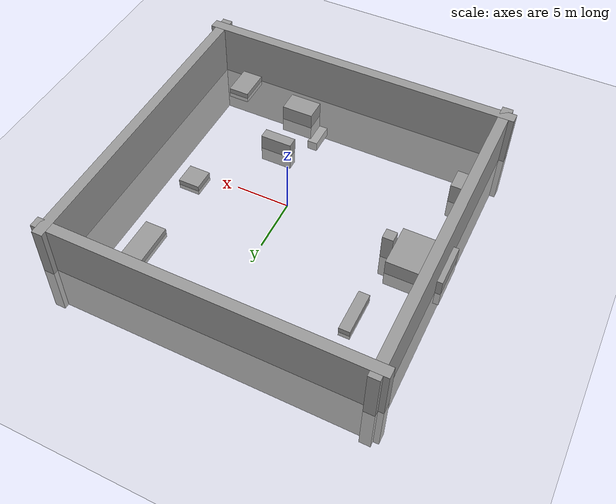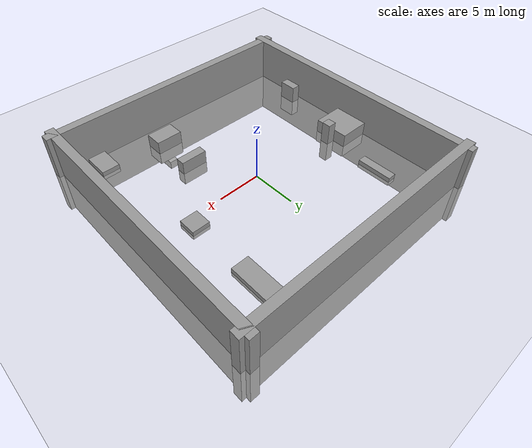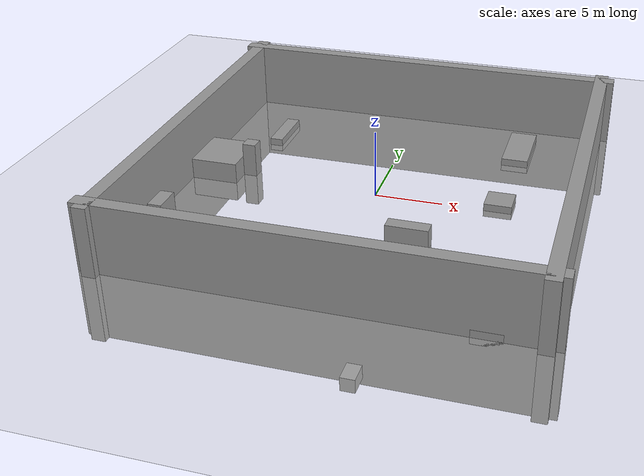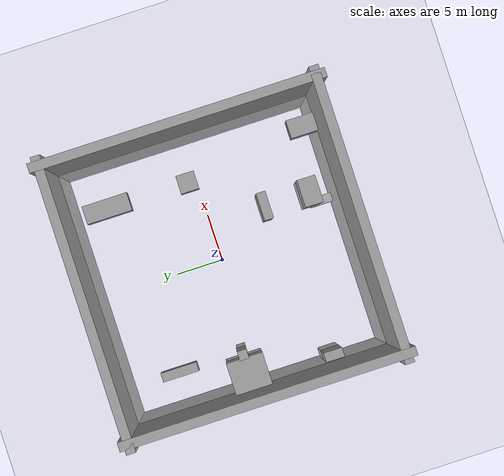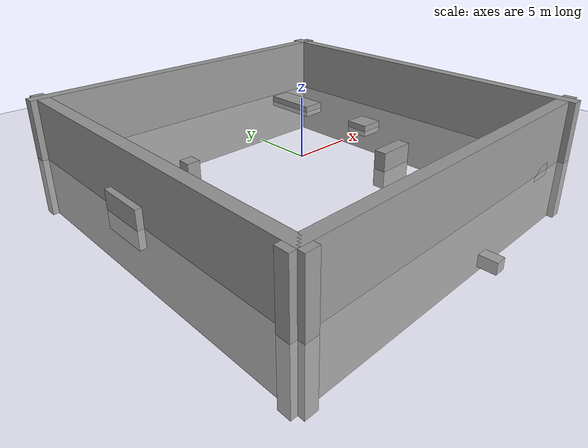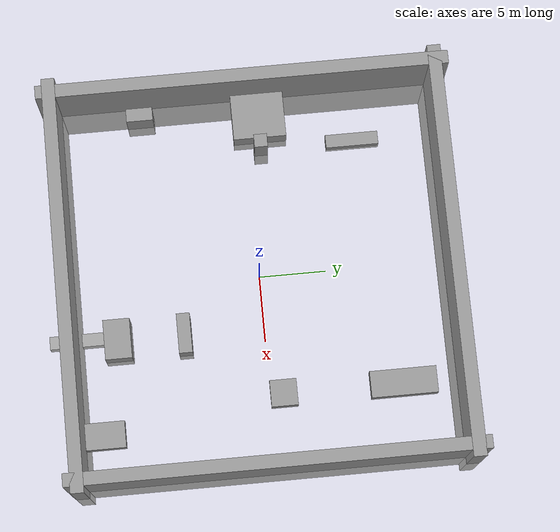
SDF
<sdf version="1.4">
 <world name="testworld">
  <plugin name="ros_interface_plugin" filename="librotors_gazebo_ros_interface_plugin.so"/>
  <light name="sun" type="directional">
   <pose>0 0 10 0 -0 0</pose>
   <diffuse>0.8 0.8 0.8 1</diffuse>
   <specular>0.2 0.2 0.2 1</specular>
   <attenuation>
    <range>1000</range>
    <constant>0.9</constant>
    <linear>0.01</linear>
    <quadratic>0.001</quadratic>
   </attenuation>
   <direction>-0.5 0.1 -0.9</direction>
   <spot><inner_angle>0</inner_angle><outer_angle>0</outer_angle><falloff>0</falloff></spot>
  </light>
  <model name="ground_plane">
   <static>1</static>
   <link name="link">
    <collision name="collision">
     <geometry><plane><normal>0 0 1</normal><size>30 30</size></plane></geometry>
     <surface>
      <contact><collide_bitmask>65535</collide_bitmask></contact>
      <friction><ode><mu>100</mu><mu2>50</mu2></ode></friction>
     </surface>
    </collision>
    <visual name="visual">
     <cast_shadows>0</cast_shadows>
     <geometry><plane><normal>0 0 1</normal><size>100 100</size></plane></geometry>
     <material>
      <script><uri>file://media/materials/scripts/gazebo.material</uri><name>Gazebo/Grey</name></script>
     </material>
    </visual>
   </link>
  </model>
  <gravity>0 0 -9.8</gravity>
  <magnetic_field>6e-06 2.3e-05 -4.2e-05</magnetic_field>
  <atmosphere type="adiabatic"/>
  <physics type="ode">
   <max_step_size>0.001</max_step_size>
   <real_time_factor>1</real_time_factor>
   <real_time_update_rate>1000</real_time_update_rate>
  </physics>
  <scene><ambient>0.4 0.4 0.4 1</ambient><background>0.7 0.7 0.7 1</background><shadows>1</shadows></scene>
  <spherical_coordinates>
   <surface_model>EARTH_WGS84</surface_model>
   <latitude_deg>0</latitude_deg>
   <longitude_deg>0</longitude_deg>
   <elevation>0</elevation>
   <heading_deg>0</heading_deg>
  </spherical_coordinates>
  <model name="box_xldzq">
   <pose>0 -14.5 0 0.0 0.0 0.0</pose>
   <link name="link">
    <inertial>
     <mass>1</mass>
     <inertia>
      <ixx>0.166667</ixx>
      <ixy>0</ixy>
      <ixz>0</ixz>
      <iyy>0.166667</iyy>
      <iyz>0</iyz>
      <izz>0.166667</izz>
     </inertia>
    </inertial>
    <collision name="collision"><geometry><box><size>31 1 10</size></box></geometry></collision>
    <visual name="visual">
     <geometry><box><size>31 1 10</size></box></geometry>
     <material>
      <script><name>Gazebo/Grey</name><uri>file://media/materials/scripts/gazebo.material</uri></script>
     </material>
    </visual>
   </link>
   <static>1</static>
  </model>
  <model name="box_pqfwh">
   <pose>0 14.5 0 0.0 0.0 0.0</pose>
   <link name="link">
    <inertial>
     <mass>1</mass>
     <inertia>
      <ixx>0.166667</ixx>
      <ixy>0</ixy>
      <ixz>0</ixz>
      <iyy>0.166667</iyy>
      <iyz>0</iyz>
      <izz>0.166667</izz>
     </inertia>
    </inertial>
    <collision name="collision"><geometry><box><size>31 1 10</size></box></geometry></collision>
    <visual name="visual">
     <geometry><box><size>31 1 10</size></box></geometry>
     <material>
      <script><name>Gazebo/Grey</name><uri>file://media/materials/scripts/gazebo.material</uri></script>
     </material>
    </visual>
   </link>
   <static>1</static>
  </model>
  <model name="box_gbfbz">
   <pose>14.5 0 0 0.0 0.0 1.5707963267948966</pose>
   <link name="link">
    <inertial>
     <mass>1</mass>
     <inertia>
      <ixx>0.166667</ixx>
      <ixy>0</ixy>
      <ixz>0</ixz>
      <iyy>0.166667</iyy>
      <iyz>0</iyz>
      <izz>0.166667</izz>
     </inertia>
    </inertial>
    <collision name="collision"><geometry><box><size>31 1 10</size></box></geometry></collision>
    <visual name="visual">
     <geometry><box><size>31 1 10</size></box></geometry>
     <material>
      <script><name>Gazebo/Grey</name><uri>file://media/materials/scripts/gazebo.material</uri></script>
     </material>
    </visual>
   </link>
   <static>1</static>
  </model>
  <model name="box_jvxqp">
   <pose>-14.5 0 0 0.0 0.0 1.5707963267948966</pose>
   <link name="link">
    <inertial>
     <mass>1</mass>
     <inertia>
      <ixx>0.166667</ixx>
      <ixy>0</ixy>
      <ixz>0</ixz>
      <iyy>0.166667</iyy>
      <iyz>0</iyz>
      <izz>0.166667</izz>
     </inertia>
    </inertial>
    <collision name="collision"><geometry><box><size>31 1 10</size></box></geometry></collision>
    <visual name="visual">
     <geometry><box><size>31 1 10</size></box></geometry>
     <material>
      <script><name>Gazebo/Grey</name><uri>file://media/materials/scripts/gazebo.material</uri></script>
     </material>
    </visual>
   </link>
   <static>1</static>
  </model>
  <model name="box_ebvtl">
   <pose>-13 -8 0 0.0 0.0 0.0</pose>
   <link name="link">
    <inertial>
     <mass>1</mass>
     <inertia>
      <ixx>0.166667</ixx>
      <ixy>0</ixy>
      <ixz>0</ixz>
      <iyy>0.166667</iyy>
      <iyz>0</iyz>
      <izz>0.166667</izz>
     </inertia>
    </inertial>
    <collision name="collision"><geometry><box><size>1 2 4</size></box></geometry></collision>
    <visual name="visual">
     <geometry><box><size>1 2 4</size></box></geometry>
     <material>
      <script><name>Gazebo/Grey</name><uri>file://media/materials/scripts/gazebo.material</uri></script>
     </material>
    </visual>
   </link>
   <static>1</static>
  </model>
  <model name="box_oucis">
   <pose>4 -6 0 0.0 0.0 0.0</pose>
   <link name="link">
    <inertial>
     <mass>1</mass>
     <inertia>
      <ixx>0.166667</ixx>
      <ixy>0</ixy>
      <ixz>0</ixz>
      <iyy>0.166667</iyy>
      <iyz>0</iyz>
      <izz>0.166667</izz>
     </inertia>
    </inertial>
    <collision name="collision"><geometry><box><size>3 1 3</size></box></geometry></collision>
    <visual name="visual">
     <geometry><box><size>3 1 3</size></box></geometry>
     <material>
      <script><name>Gazebo/Grey</name><uri>file://media/materials/scripts/gazebo.material</uri></script>
     </material>
    </visual>
   </link>
   <static>1</static>
  </model>
  <model name="box_dffmr">
   <pose>4 -11 0 0.0 0.0 0.0</pose>
   <link name="link">
    <inertial>
     <mass>1</mass>
     <inertia>
      <ixx>0.166667</ixx>
      <ixy>0</ixy>
      <ixz>0</ixz>
      <iyy>0.166667</iyy>
      <iyz>0</iyz>
      <izz>0.166667</izz>
     </inertia>
    </inertial>
    <collision name="collision"><geometry><box><size>3 2 3</size></box></geometry></collision>
    <visual name="visual">
     <geometry><box><size>3 2 3</size></box></geometry>
     <material>
      <script><name>Gazebo/Grey</name><uri>file://media/materials/scripts/gazebo.material</uri></script>
     </material>
    </visual>
   </link>
   <static>1</static>
  </model>
  <model name="box_mukgg">
   <pose>-10 1 0 0.0 0.0 0.0</pose>
   <link name="link">
    <inertial>
     <mass>1</mass>
     <inertia>
      <ixx>0.166667</ixx>
      <ixy>0</ixy>
      <ixz>0</ixz>
      <iyy>0.166667</iyy>
      <iyz>0</iyz>
      <izz>0.166667</izz>
     </inertia>
    </inertial>
    <collision name="collision"><geometry><box><size>1 1 5</size></box></geometry></collision>
    <visual name="visual">
     <geometry><box><size>1 1 5</size></box></geometry>
     <material>
      <script><name>Gazebo/Grey</name><uri>file://media/materials/scripts/gazebo.material</uri></script>
     </material>
    </visual>
   </link>
   <static>1</static>
  </model>
  <model name="box_obyld">
   <pose>-10 8 0 0.0 0.0 0.0</pose>
   <link name="link">
    <inertial>
     <mass>1</mass>
     <inertia>
      <ixx>0.166667</ixx>
      <ixy>0</ixy>
      <ixz>0</ixz>
      <iyy>0.166667</iyy>
      <iyz>0</iyz>
      <izz>0.166667</izz>
     </inertia>
    </inertial>
    <collision name="collision"><geometry><box><size>1 4 1</size></box></geometry></collision>
    <visual name="visual">
     <geometry><box><size>1 4 1</size></box></geometry>
     <material>
      <script><name>Gazebo/Grey</name><uri>file://media/materials/scripts/gazebo.material</uri></script>
     </material>
    </visual>
   </link>
   <static>1</static>
  </model>
  <model name="box_izheu">
   <pose>-13 1 0 0.0 0.0 0.0</pose>
   <link name="link">
    <inertial>
     <mass>1</mass>
     <inertia>
      <ixx>0.166667</ixx>
      <ixy>0</ixy>
      <ixz>0</ixz>
      <iyy>0.166667</iyy>
      <iyz>0</iyz>
      <izz>0.166667</izz>
     </inertia>
    </inertial>
    <collision name="collision"><geometry><box><size>5 4 3</size></box></geometry></collision>
    <visual name="visual">
     <geometry><box><size>5 4 3</size></box></geometry>
     <material>
      <script><name>Gazebo/Grey</name><uri>file://media/materials/scripts/gazebo.material</uri></script>
     </material>
    </visual>
   </link>
   <static>1</static>
  </model>
  <model name="box_jjunb">
   <pose>3 -14 -4 0.0 0.0 0.0</pose>
   <link name="link">
    <inertial>
     <mass>1</mass>
     <inertia>
      <ixx>0.166667</ixx>
      <ixy>0</ixy>
      <ixz>0</ixz>
      <iyy>0.166667</iyy>
      <iyz>0</iyz>
      <izz>0.166667</izz>
     </inertia>
    </inertial>
    <collision name="collision"><geometry><box><size>1 5 1</size></box></geometry></collision>
    <visual name="visual">
     <geometry><box><size>1 5 1</size></box></geometry>
     <material>
      <script><name>Gazebo/Grey</name><uri>file://media/materials/scripts/gazebo.material</uri></script>
     </material>
    </visual>
   </link>
   <static>1</static>
  </model>
  <model name="box_bppmm">
   <pose>9 10 0 0.0 0.0 0.0</pose>
   <link name="link">
    <inertial>
     <mass>1</mass>
     <inertia>
      <ixx>0.166667</ixx>
      <ixy>0</ixy>
      <ixz>0</ixz>
      <iyy>0.166667</iyy>
      <iyz>0</iyz>
      <izz>0.166667</izz>
     </inertia>
    </inertial>
    <collision name="collision"><geometry><box><size>2 5 1</size></box></geometry></collision>
    <visual name="visual">
     <geometry><box><size>2 5 1</size></box></geometry>
     <material>
      <script><name>Gazebo/Grey</name><uri>file://media/materials/scripts/gazebo.material</uri></script>
     </material>
    </visual>
   </link>
   <static>1</static>
  </model>
  <model name="box_livii">
   <pose>11 -13 0 0.0 0.0 0.0</pose>
   <link name="link">
    <inertial>
     <mass>1</mass>
     <inertia>
      <ixx>0.166667</ixx>
      <ixy>0</ixy>
      <ixz>0</ixz>
      <iyy>0.166667</iyy>
      <iyz>0</iyz>
      <izz>0.166667</izz>
     </inertia>
    </inertial>
    <collision name="collision"><geometry><box><size>2 4 1</size></box></geometry></collision>
    <visual name="visual">
     <geometry><box><size>2 4 1</size></box></geometry>
     <material>
      <script><name>Gazebo/Grey</name><uri>file://media/materials/scripts/gazebo.material</uri></script>
     </material>
    </visual>
   </link>
   <static>1</static>
  </model>
  <model name="box_rivbu">
   <pose>9 1 0 0.0 0.0 0.0</pose>
   <link name="link">
    <inertial>
     <mass>1</mass>
     <inertia>
      <ixx>0.166667</ixx>
      <ixy>0</ixy>
      <ixz>0</ixz>
      <iyy>0.166667</iyy>
      <iyz>0</iyz>
      <izz>0.166667</izz>
     </inertia>
    </inertial>
    <collision name="collision"><geometry><box><size>2 2 1</size></box></geometry></collision>
    <visual name="visual">
     <geometry><box><size>2 2 1</size></box></geometry>
     <material>
      <script><name>Gazebo/Grey</name><uri>file://media/materials/scripts/gazebo.material</uri></script>
     </material>
    </visual>
   </link>
   <static>1</static>
  </model>
 </world>
</sdf>
